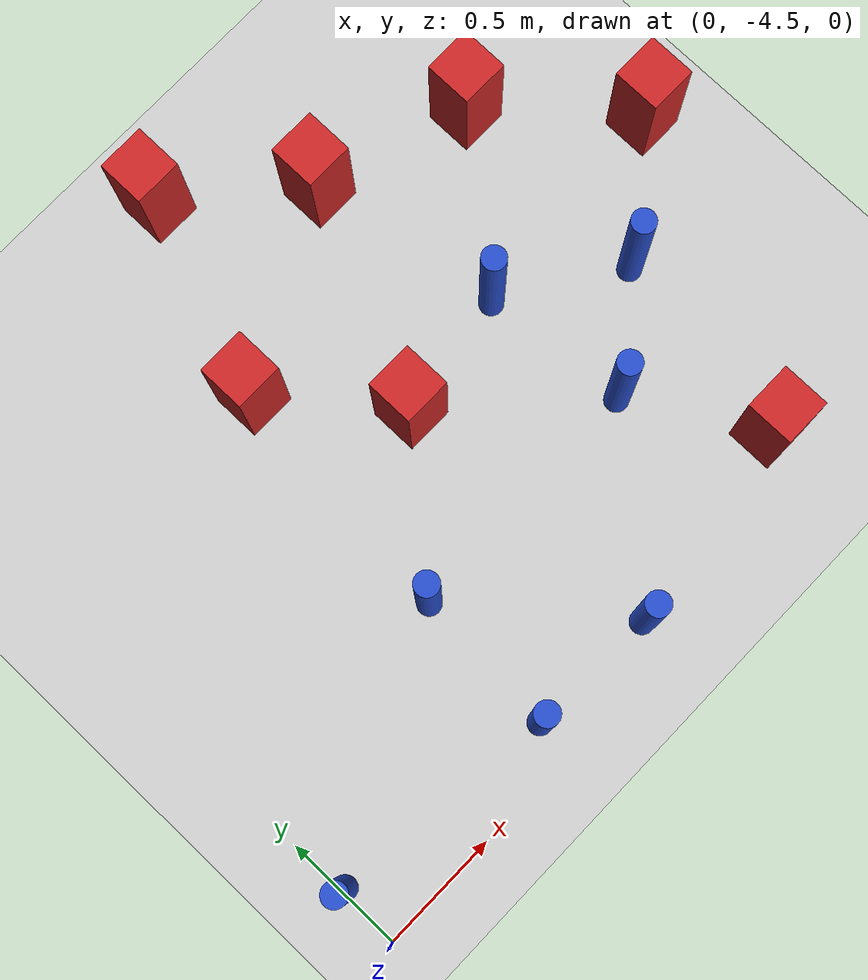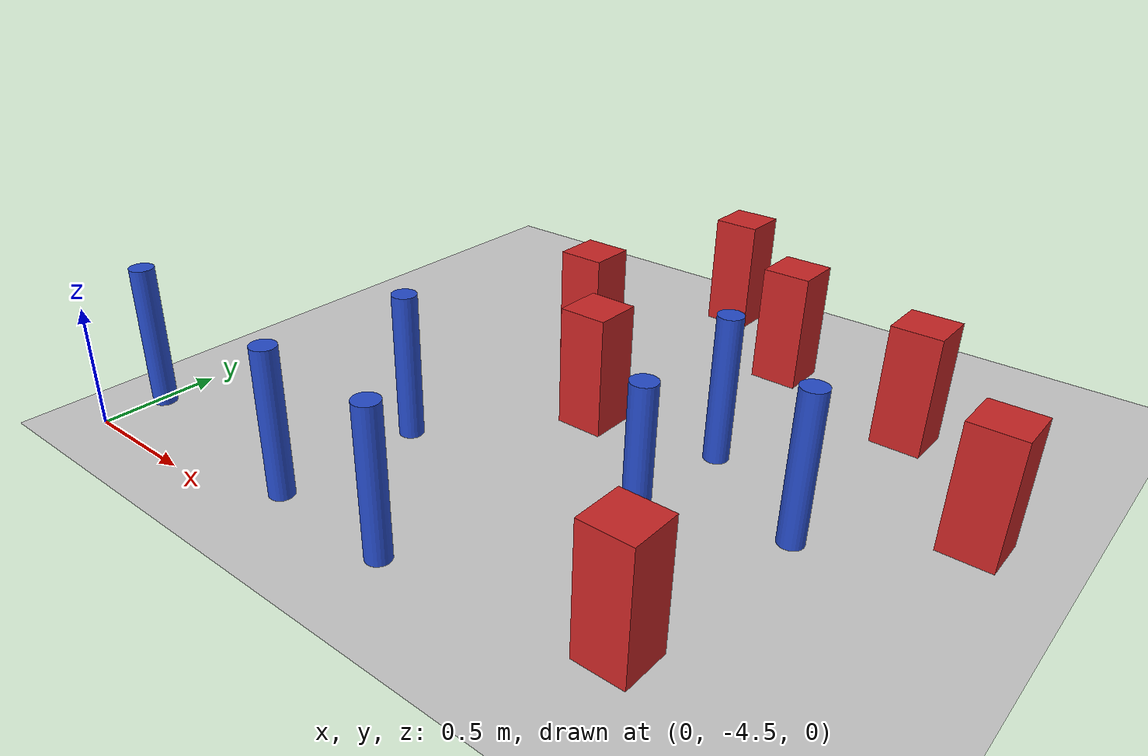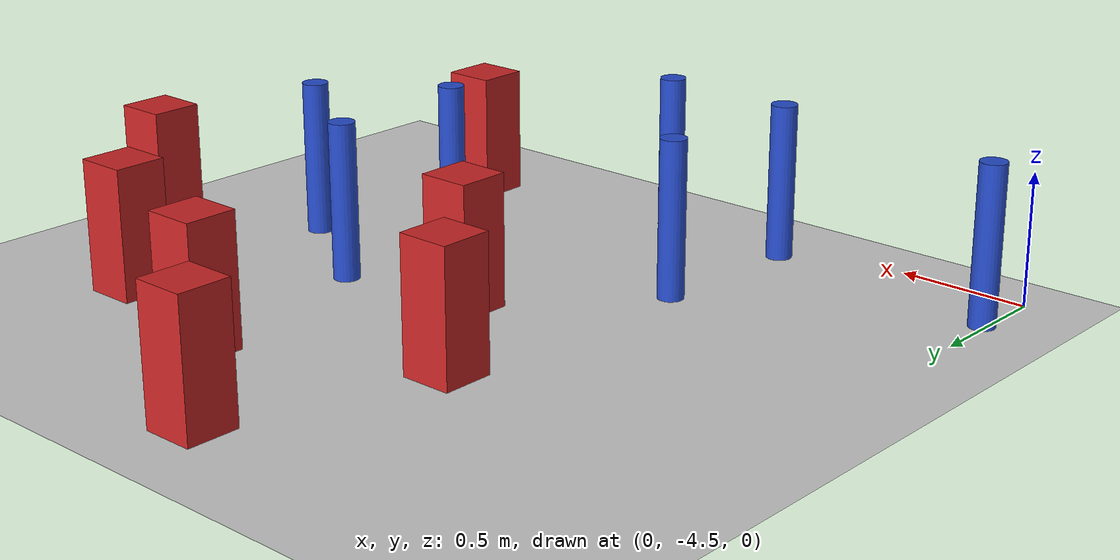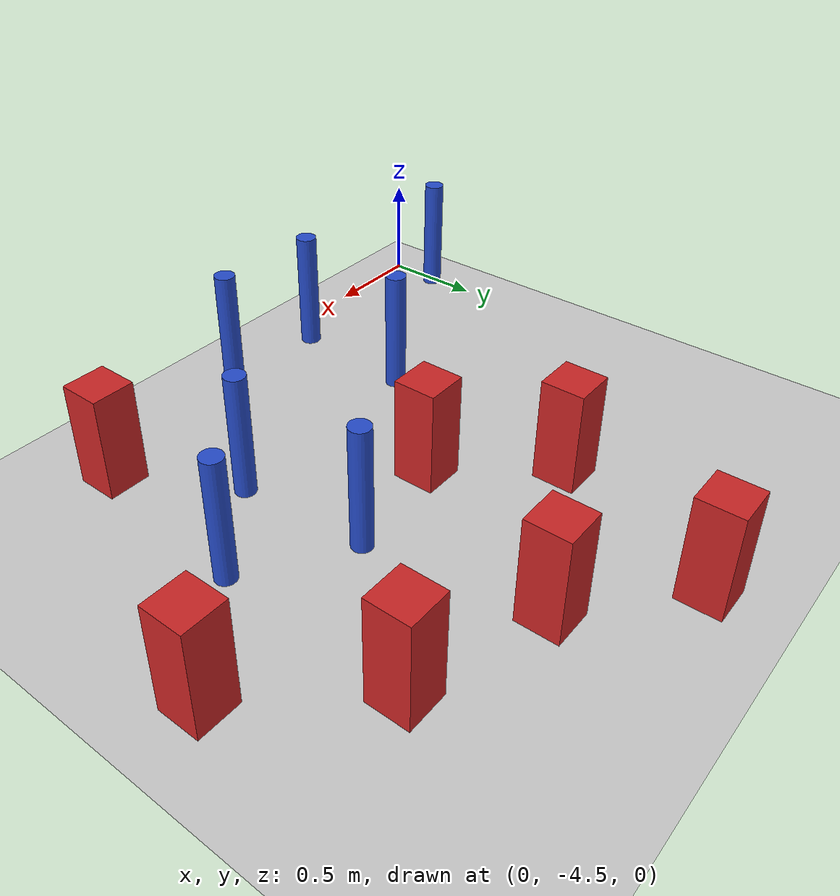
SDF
<sdf version="1.6">
 <world name="default">
  <model name="ground_plane">
   <static>1</static>
   <link name="link">
    <collision name="collision">
     <geometry><plane><normal>0 0 1</normal><size>100 100</size></plane></geometry>
     <surface><friction><ode><mu>100</mu><mu2>50</mu2></ode></friction></surface>
    </collision>
    <visual name="visual">
     <cast_shadows>0</cast_shadows>
     <geometry><plane><normal>0 0 1</normal><size>100 100</size></plane></geometry>
     <material>
      <ambient>1.0 1.0 1.0 1.0</ambient>
      <diffuse>0.8 0.8 0.8 1.0</diffuse>
      <specular>0.01 0.01 0.01 1.000000</specular>
     </material>
    </visual>
   </link>
  </model>
  <model name="square_post_obstacle9">
   <static>true</static>
   <pose>2.50126027885 -2.48764107828 8.22691968438e-08 7.2212513382e-06 -7.54495500217e-07 2.29674213826e-05</pose>
   <link name="link">
    <pose>0 0 0.25 0 -0 0</pose>
    <inertial>
     <mass>100</mass>
     <inertia>
      <ixx>0.166667</ixx>
      <ixy>0</ixy>
      <ixz>0</ixz>
      <iyy>0.166667</iyy>
      <iyz>0</iyz>
      <izz>0.166667</izz>
     </inertia>
    </inertial>
    <collision name="collision"><geometry><box><size>.2 .2 .5</size></box></geometry></collision>
    <visual name="visual">
     <geometry><box><size>.2 .2 .5</size></box></geometry>
     <material>
      <script><name>Gazebo/Red</name><uri>file://media/materials/scripts/gazebo.material</uri></script>
     </material>
    </visual>
   </link>
  </model>
  <model name="square_post_obstacle24">
   <static>true</static>
   <pose>1.8701958105 -2.29422337343 8.22691968438e-08 7.2212513382e-06 -7.54495500217e-07 2.29674213826e-05</pose>
   <link name="link">
    <pose>0 0 0.25 0 -0 0</pose>
    <inertial>
     <mass>100</mass>
     <inertia>
      <ixx>0.166667</ixx>
      <ixy>0</ixy>
      <ixz>0</ixz>
      <iyy>0.166667</iyy>
      <iyz>0</iyz>
      <izz>0.166667</izz>
     </inertia>
    </inertial>
    <collision name="collision"><geometry><box><size>.2 .2 .5</size></box></geometry></collision>
    <visual name="visual">
     <geometry><box><size>.2 .2 .5</size></box></geometry>
     <material>
      <script><name>Gazebo/Red</name><uri>file://media/materials/scripts/gazebo.material</uri></script>
     </material>
    </visual>
   </link>
  </model>
  <model name="square_post_obstacle58">
   <static>true</static>
   <pose>2.96455247818 -3.01054409783 8.22691968438e-08 7.2212513382e-06 -7.54495500217e-07 2.29674213826e-05</pose>
   <link name="link">
    <pose>0 0 0.25 0 -0 0</pose>
    <inertial>
     <mass>100</mass>
     <inertia>
      <ixx>0.166667</ixx>
      <ixy>0</ixy>
      <ixz>0</ixz>
      <iyy>0.166667</iyy>
      <iyz>0</iyz>
      <izz>0.166667</izz>
     </inertia>
    </inertial>
    <collision name="collision"><geometry><box><size>.2 .2 .5</size></box></geometry></collision>
    <visual name="visual">
     <geometry><box><size>.2 .2 .5</size></box></geometry>
     <material>
      <script><name>Gazebo/Red</name><uri>file://media/materials/scripts/gazebo.material</uri></script>
     </material>
    </visual>
   </link>
  </model>
  <model name="square_post_obstacle74">
   <static>true</static>
   <pose>1.09983535135 -2.69447167061 8.22691968438e-08 7.2212513382e-06 -7.54495500217e-07 2.29674213826e-05</pose>
   <link name="link">
    <pose>0 0 0.25 0 -0 0</pose>
    <inertial>
     <mass>100</mass>
     <inertia>
      <ixx>0.166667</ixx>
      <ixy>0</ixy>
      <ixz>0</ixz>
      <iyy>0.166667</iyy>
      <iyz>0</iyz>
      <izz>0.166667</izz>
     </inertia>
    </inertial>
    <collision name="collision"><geometry><box><size>.2 .2 .5</size></box></geometry></collision>
    <visual name="visual">
     <geometry><box><size>.2 .2 .5</size></box></geometry>
     <material>
      <script><name>Gazebo/Red</name><uri>file://media/materials/scripts/gazebo.material</uri></script>
     </material>
    </visual>
   </link>
  </model>
  <model name="pole_obstacle91">
   <static>true</static>
   <pose>1.49995526968 -4.36305457644 2.88873142074e-08 -9.90536689852e-09 4.60219948989e-07 -1.2096599496e-07</pose>
   <link name="link">
    <pose>0 0 0.3 0 -0 0</pose>
    <inertial>
     <mass>1</mass>
     <inertia><ixx>0.145833</ixx><ixy>0</ixy><ixz>0</ixz><iyy>0.145833</iyy><iyz>0</iyz><izz>0.125</izz></inertia>
    </inertial>
    <collision name="collision">
     <geometry><cylinder><radius>0.05</radius><length>.6</length></cylinder></geometry>
    </collision>
    <visual name="visual">
     <geometry><cylinder><radius>0.05</radius><length>.6</length></cylinder></geometry>
     <material>
      <script><name>Gazebo/Blue</name><uri>file://media/materials/scripts/gazebo.material</uri></script>
     </material>
    </visual>
   </link>
  </model>
  <model name="pole_obstacle104">
   <static>true</static>
   <pose>2.01143298686 -3.09226912773 2.88873142074e-08 -9.9053669043e-09 4.60219948975e-07 -1.2096599497e-07</pose>
   <link name="link">
    <pose>0 0 0.3 0 -0 0</pose>
    <inertial>
     <mass>1</mass>
     <inertia><ixx>0.145833</ixx><ixy>0</ixy><ixz>0</ixz><iyy>0.145833</iyy><iyz>0</iyz><izz>0.125</izz></inertia>
    </inertial>
    <collision name="collision">
     <geometry><cylinder><radius>0.05</radius><length>.6</length></cylinder></geometry>
    </collision>
    <visual name="visual">
     <geometry><cylinder><radius>0.05</radius><length>.6</length></cylinder></geometry>
     <material>
      <script><name>Gazebo/Blue</name><uri>file://media/materials/scripts/gazebo.material</uri></script>
     </material>
    </visual>
   </link>
  </model>
  <model name="pole_obstacle143">
   <static>true</static>
   <pose>0.0179665733012 -4.23759715565 2.88873142074e-08 -9.9053668965e-09 4.60219948994e-07 -1.20965994958e-07</pose>
   <link name="link">
    <pose>0 0 0.3 0 -0 0</pose>
    <inertial>
     <mass>1</mass>
     <inertia><ixx>0.145833</ixx><ixy>0</ixy><ixz>0</ixz><iyy>0.145833</iyy><iyz>0</iyz><izz>0.125</izz></inertia>
    </inertial>
    <collision name="collision">
     <geometry><cylinder><radius>0.05</radius><length>.6</length></cylinder></geometry>
    </collision>
    <visual name="visual">
     <geometry><cylinder><radius>0.05</radius><length>.6</length></cylinder></geometry>
     <material>
      <script><name>Gazebo/Blue</name><uri>file://media/materials/scripts/gazebo.material</uri></script>
     </material>
    </visual>
   </link>
  </model>
  <model name="pole_obstacle144">
   <static>true</static>
   <pose>0.994830304478 -3.73205569937 2.88873142074e-08 -9.90536689802e-09 4.6021994899e-07 -1.2096599496e-07</pose>
   <link name="link">
    <pose>0 0 0.3 0 -0 0</pose>
    <inertial>
     <mass>1</mass>
     <inertia><ixx>0.145833</ixx><ixy>0</ixy><ixz>0</ixz><iyy>0.145833</iyy><iyz>0</iyz><izz>0.125</izz></inertia>
    </inertial>
    <collision name="collision">
     <geometry><cylinder><radius>0.05</radius><length>.6</length></cylinder></geometry>
    </collision>
    <visual name="visual">
     <geometry><cylinder><radius>0.05</radius><length>.6</length></cylinder></geometry>
     <material>
      <script><name>Gazebo/Blue</name><uri>file://media/materials/scripts/gazebo.material</uri></script>
     </material>
    </visual>
   </link>
  </model>
  <model name="pole_obstacle148">
   <static>true</static>
   <pose>2.48455865989 -3.38825252655 2.88873142074e-08 -9.90536690232e-09 4.6021994898e-07 -1.20965994968e-07</pose>
   <link name="link">
    <pose>0 0 0.3 0 -0 0</pose>
    <inertial>
     <mass>1</mass>
     <inertia><ixx>0.145833</ixx><ixy>0</ixy><ixz>0</ixz><iyy>0.145833</iyy><iyz>0</iyz><izz>0.125</izz></inertia>
    </inertial>
    <collision name="collision">
     <geometry><cylinder><radius>0.05</radius><length>.6</length></cylinder></geometry>
    </collision>
    <visual name="visual">
     <geometry><cylinder><radius>0.05</radius><length>.6</length></cylinder></geometry>
     <material>
      <script><name>Gazebo/Blue</name><uri>file://media/materials/scripts/gazebo.material</uri></script>
     </material>
    </visual>
   </link>
  </model>
  <model name="pole_obstacle157">
   <static>true</static>
   <pose>0.956785338361 -4.34297784776 2.88873142074e-08 -9.90536689421e-09 4.60219948999e-07 -1.20965994953e-07</pose>
   <link name="link">
    <pose>0 0 0.3 0 -0 0</pose>
    <inertial>
     <mass>1</mass>
     <inertia><ixx>0.145833</ixx><ixy>0</ixy><ixz>0</ixz><iyy>0.145833</iyy><iyz>0</iyz><izz>0.125</izz></inertia>
    </inertial>
    <collision name="collision">
     <geometry><cylinder><radius>0.05</radius><length>.6</length></cylinder></geometry>
    </collision>
    <visual name="visual">
     <geometry><cylinder><radius>0.05</radius><length>.6</length></cylinder></geometry>
     <material>
      <script><name>Gazebo/Blue</name><uri>file://media/materials/scripts/gazebo.material</uri></script>
     </material>
    </visual>
   </link>
  </model>
  <model name="square_post_obstacle167">
   <static>true</static>
   <pose>1.39172656039 -1.88307533844 8.22691968438e-08 7.2212513382e-06 -7.54495500217e-07 2.29674213826e-05</pose>
   <link name="link">
    <pose>0 0 0.25 0 -0 0</pose>
    <inertial>
     <mass>100</mass>
     <inertia>
      <ixx>0.166667</ixx>
      <ixy>0</ixy>
      <ixz>0</ixz>
      <iyy>0.166667</iyy>
      <iyz>0</iyz>
      <izz>0.166667</izz>
     </inertia>
    </inertial>
    <collision name="collision"><geometry><box><size>.2 .2 .5</size></box></geometry></collision>
    <visual name="visual">
     <geometry><box><size>.2 .2 .5</size></box></geometry>
     <material>
      <script><name>Gazebo/Red</name><uri>file://media/materials/scripts/gazebo.material</uri></script>
     </material>
    </visual>
   </link>
  </model>
  <model name="square_post_obstacle177">
   <static>true</static>
   <pose>2.36703555873 -4.21192141958 8.22691968438e-08 7.2212513382e-06 -7.54495500217e-07 2.29674213826e-05</pose>
   <link name="link">
    <pose>0 0 0.25 0 -0 0</pose>
    <inertial>
     <mass>100</mass>
     <inertia>
      <ixx>0.166667</ixx>
      <ixy>0</ixy>
      <ixz>0</ixz>
      <iyy>0.166667</iyy>
      <iyz>0</iyz>
      <izz>0.166667</izz>
     </inertia>
    </inertial>
    <collision name="collision"><geometry><box><size>.2 .2 .5</size></box></geometry></collision>
    <visual name="visual">
     <geometry><box><size>.2 .2 .5</size></box></geometry>
     <material>
      <script><name>Gazebo/Red</name><uri>file://media/materials/scripts/gazebo.material</uri></script>
     </material>
    </visual>
   </link>
  </model>
  <model name="square_post_obstacle195">
   <static>true</static>
   <pose>1.48001171566 -3.17091634264 8.22691968438e-08 7.2212513382e-06 -7.54495500217e-07 2.29674213826e-05</pose>
   <link name="link">
    <pose>0 0 0.25 0 -0 0</pose>
    <inertial>
     <mass>100</mass>
     <inertia>
      <ixx>0.166667</ixx>
      <ixy>0</ixy>
      <ixz>0</ixz>
      <iyy>0.166667</iyy>
      <iyz>0</iyz>
      <izz>0.166667</izz>
     </inertia>
    </inertial>
    <collision name="collision"><geometry><box><size>.2 .2 .5</size></box></geometry></collision>
    <visual name="visual">
     <geometry><box><size>.2 .2 .5</size></box></geometry>
     <material>
      <script><name>Gazebo/Red</name><uri>file://media/materials/scripts/gazebo.material</uri></script>
     </material>
    </visual>
   </link>
  </model>
  <model name="pole_obstacle202">
   <static>true</static>
   <pose>2.06511179851 -3.70739348728 2.88873142074e-08 -9.90536690232e-09 4.6021994898e-07 -1.20965994968e-07</pose>
   <link name="link">
    <pose>0 0 0.3 0 -0 0</pose>
    <inertial>
     <mass>1</mass>
     <inertia><ixx>0.145833</ixx><ixy>0</ixy><ixz>0</ixz><iyy>0.145833</iyy><iyz>0</iyz><izz>0.125</izz></inertia>
    </inertial>
    <collision name="collision">
     <geometry><cylinder><radius>0.05</radius><length>.6</length></cylinder></geometry>
    </collision>
    <visual name="visual">
     <geometry><cylinder><radius>0.05</radius><length>.6</length></cylinder></geometry>
     <material>
      <script><name>Gazebo/Blue</name><uri>file://media/materials/scripts/gazebo.material</uri></script>
     </material>
    </visual>
   </link>
  </model>
 </world>
</sdf>
